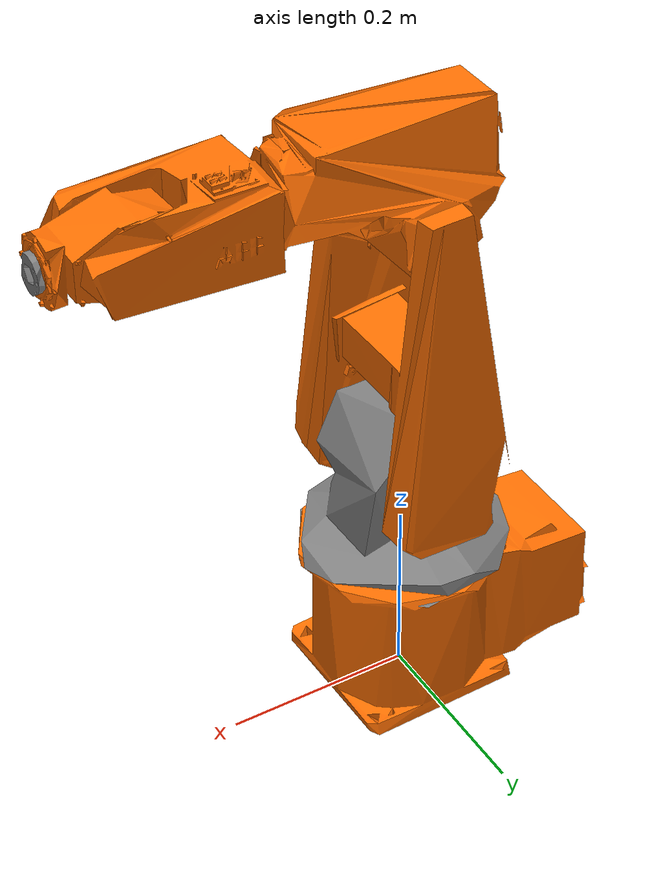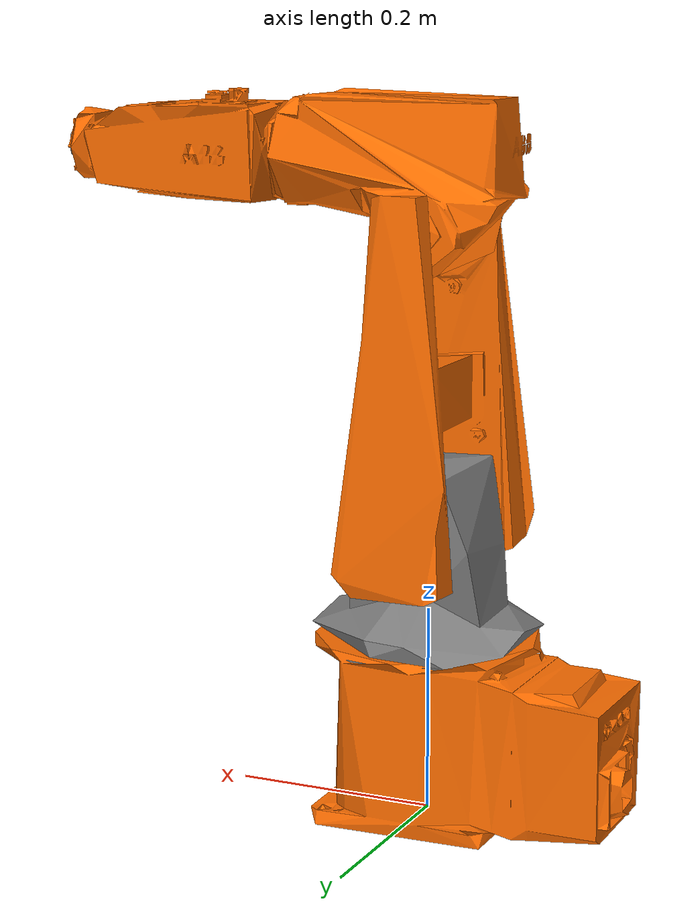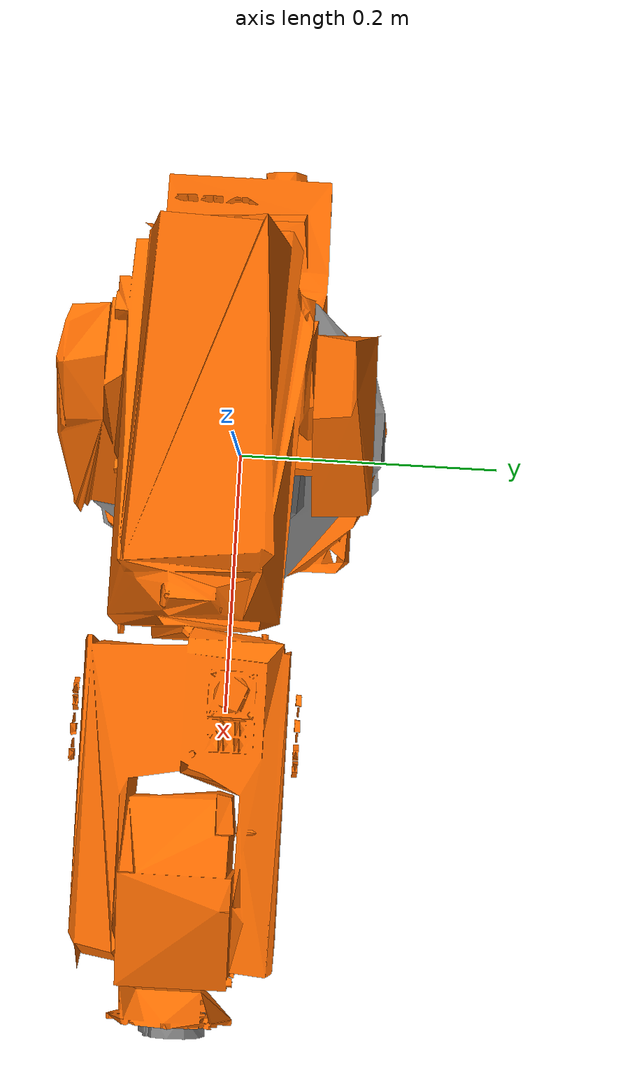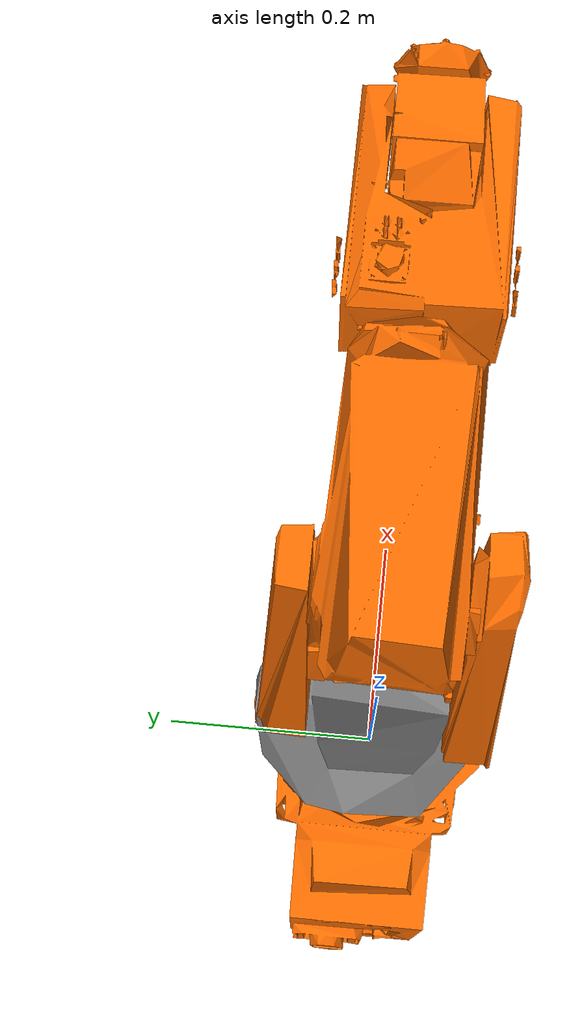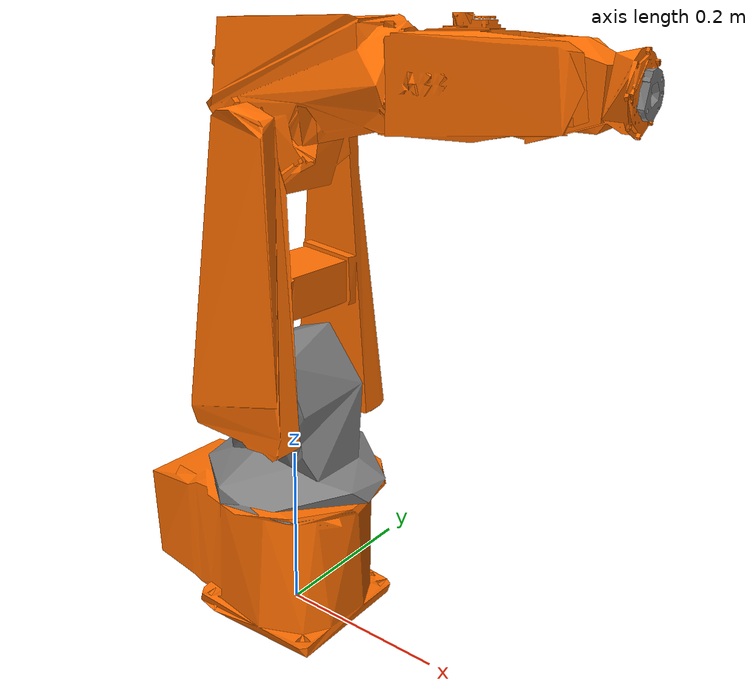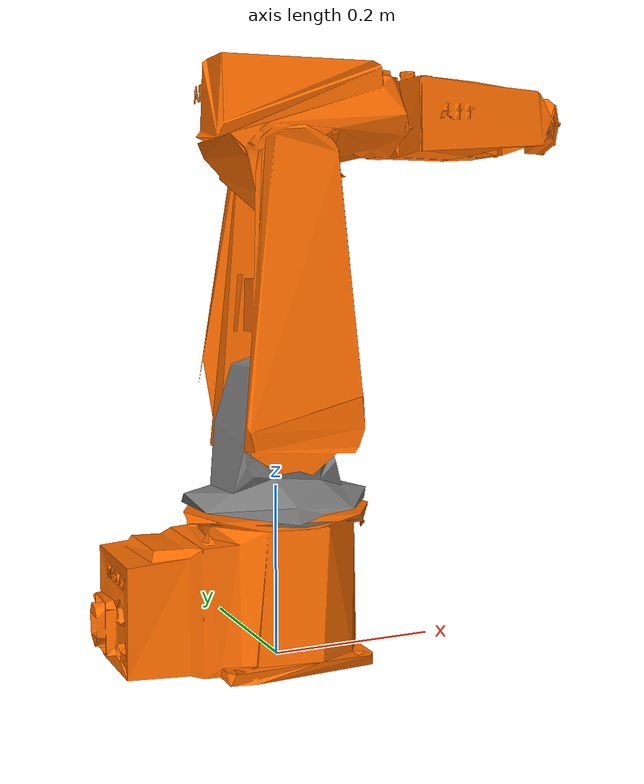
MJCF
<mujoco model="irb120">
  <compiler angle="radian" balanceinertia="true"/>
  <option gravity="0 0 -9.81"/>

  <asset>
    <mesh name="base"  file="meshes/base.stl" scale="0.001 0.001 0.001"/>
    <mesh name="link1" file="meshes/link1.stl" scale="0.001 0.001 0.001"/>
    <mesh name="link2" file="meshes/link2.stl" scale="0.001 0.001 0.001"/>
    <mesh name="link3" file="meshes/link3.stl" scale="0.001 0.001 0.001"/>
    <mesh name="link4" file="meshes/link4.stl" scale="0.001 0.001 0.001"/>
    <mesh name="link5" file="meshes/link5.stl" scale="0.001 0.001 0.001"/>
    <mesh name="link6" file="meshes/link6.stl" scale="0.001 0.001 0.001"/>
  </asset>

  <worldbody>
    <body name="inertial">

      <body name="base">
        <geom type="mesh" mesh="base" rgba="1 0.43 0 1" contype="0" conaffinity="0" group="2"/>
        <inertial pos="0 0 0" mass="6.21503193527" diaginertia="0.0247272 0.0491285 0.0472376"/>

        <body name="link1" pos="0 0 0.145">
          <joint name="joint1" type="hinge" axis="0 0 1"/>
          <inertial pos="0 0 0.062" mass="3" diaginertia="0.014 0.01 0.014"/>
          <geom type="mesh" mesh="link1" contype="0" conaffinity="0" group="2"/>

          <body name="link2" pos="0 0 0.145">
            <joint name="joint2" type="hinge" axis="0 1 0"/>
            <inertial pos="0 0 0.12" mass="3.9" diaginertia="0.06 0.026 0.042"/>
            <geom type="mesh" mesh="link2" rgba="1 0.43 0 1" contype="0" conaffinity="0" group="2"/>

            <body name="link3" pos="0 0 0.27">
              <joint name="joint3" type="hinge" axis="0 1 0"/>
              <inertial pos="0.5 0 0.03" mass="2.9" diaginertia="0.008 0.013 0.017"/>
              <geom type="mesh" mesh="link3" rgba="1 0.43 0 1" contype="0" conaffinity="0" group="2"/>

              <body name="link4" pos="0.134 0 0.07">
                <joint name="joint4" type="hinge" axis="1 0 0"/>
                <inertial pos="0 0 0.07" mass="1.3" diaginertia="0.003 0.005 0.004"/>
                <geom type="mesh" mesh="link4" rgba="1 0.43 0 1" contype="0" conaffinity="0" group="2"/>

                <body name="link5" pos="0.168 0 0">
                  <joint name="joint5" type="hinge" axis="0 1 0"/>
                  <inertial pos="0 0 0.03" mass="0.55" diaginertia="0.0004 0.0008 0.0009"/>
                  <geom type="mesh" mesh="link5" rgba="1 0.43 0 1" contype="0" conaffinity="0" group="2"/>

                  <body name="link6" pos="0.072 0 0">
                    <joint name="joint6" type="hinge" axis="1 0 0"/>
                    <inertial pos="0 0 0" mass="0.014" diaginertia="0.002 0.002 0.003"/>
                    <geom type="mesh" mesh="link6" contype="0" conaffinity="0" group="2"/>

                    <body name="end-effector">
                    </body>

                  </body>
                </body>
              </body>
            </body>
          </body>
        </body>
      </body>
    </body>

  </worldbody>
  <actuator>
    <motor name="joint1_motor" joint="joint1"/>
    <motor name="joint2_motor" joint="joint2"/>
    <motor name="joint3_motor" joint="joint3"/>
    <motor name="joint4_motor" joint="joint4"/>
    <motor name="joint5_motor" joint="joint5"/>
    <motor name="joint6_motor" joint="joint6"/>
  </actuator>
</mujoco>
